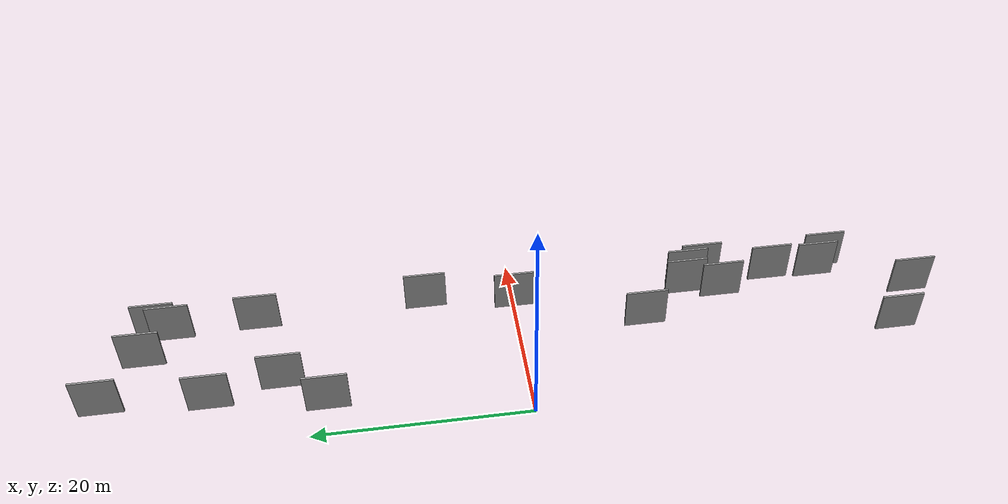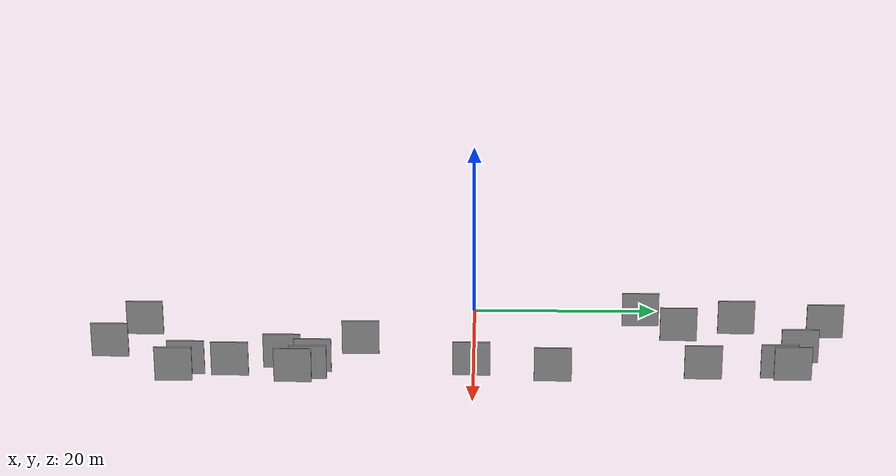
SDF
<sdf version="1.6">
 <world name="default">
  <scene>
   <sky><clouds><speed>12</speed></clouds></sky>
   <ambient>0.4 0.4 0.4 1</ambient>
   <background>0.7 0.7 0.7 1</background>
   <shadows>1</shadows>
  </scene>
  <gravity>0 0 -9.8066</gravity>
  <magnetic_field>6e-06 2.3e-05 -4.2e-05</magnetic_field>
  <physics default="0" name="default_physics" type="ode">
   <ode>
    <solver>
     <type>quick</type>
     <iters>10</iters>
     <sor>1.0</sor>
     <use_dynamic_moi_rescaling>0</use_dynamic_moi_rescaling>
    </solver>
    <constraints>
     <cfm>0</cfm>
     <erp>0.2</erp>
     <contact_max_correcting_vel>100</contact_max_correcting_vel>
     <contact_surface_layer>0.001</contact_surface_layer>
    </constraints>
   </ode>
   <max_step_size>0.004</max_step_size>
   <real_time_factor>1</real_time_factor>
   <real_time_update_rate>250</real_time_update_rate>
  </physics>
  <light name="sun" type="directional">
   <pose>0 0 10 0 0 0</pose>
   <diffuse>0.8 0.8 0.8 1</diffuse>
   <specular>0.2 0.2 0.2 1</specular>
   <attenuation>
    <range>1000</range>
    <constant>0.9</constant>
    <linear>0.01</linear>
    <quadratic>0.001</quadratic>
   </attenuation>
   <direction>-0.5 0.1 -0.9</direction>
  </light>
  <model name="grey_wall_1">
   <static>1</static>
   <pose>15.9819 -19.2099 0.0 0.000000 0.000000 1.570796</pose>
   <link name="link">
    <pose>0 0 2.00 0 0 0</pose>
    <collision name="collision"><geometry><box><size>4.00 0.2 4.00</size></box></geometry></collision>
    <visual name="visual">
     <cast_shadows>0</cast_shadows>
     <geometry><box><size>4.00 0.2 4.00</size></box></geometry>
     <material>
      <script>
       <uri>model://grey_wall/materials/scripts</uri>
       <uri>model://grey_wall/materials/textures</uri>
       <name>vrc/grey_wall</name>
      </script>
     </material>
    </visual>
   </link>
  </model>
  <model name="grey_wall_2">
   <static>1</static>
   <pose>14.6547 -25.9899 0.0 0.000000 0.000000 1.570796</pose>
   <link name="link">
    <pose>0 0 2.00 0 0 0</pose>
    <collision name="collision"><geometry><box><size>4.00 0.2 4.00</size></box></geometry></collision>
    <visual name="visual">
     <cast_shadows>0</cast_shadows>
     <geometry><box><size>4.00 0.2 4.00</size></box></geometry>
     <material>
      <script>
       <uri>model://grey_wall/materials/scripts</uri>
       <uri>model://grey_wall/materials/textures</uri>
       <name>vrc/grey_wall</name>
      </script>
     </material>
    </visual>
   </link>
  </model>
  <model name="grey_wall_3">
   <static>1</static>
   <pose>15.3178 -17.6294 0.0 0.000000 0.000000 1.570796</pose>
   <link name="link">
    <pose>0 0 2.00 0 0 0</pose>
    <collision name="collision"><geometry><box><size>4.00 0.2 4.00</size></box></geometry></collision>
    <visual name="visual">
     <cast_shadows>0</cast_shadows>
     <geometry><box><size>4.00 0.2 4.00</size></box></geometry>
     <material>
      <script>
       <uri>model://grey_wall/materials/scripts</uri>
       <uri>model://grey_wall/materials/textures</uri>
       <name>vrc/grey_wall</name>
      </script>
     </material>
    </visual>
   </link>
  </model>
  <model name="grey_wall_4">
   <static>1</static>
   <pose>14.8927 24.5373 0.0 0.000000 0.000000 1.570796</pose>
   <link name="link">
    <pose>0 0 2.00 0 0 0</pose>
    <collision name="collision"><geometry><box><size>4.00 0.2 4.00</size></box></geometry></collision>
    <visual name="visual">
     <cast_shadows>0</cast_shadows>
     <geometry><box><size>4.00 0.2 4.00</size></box></geometry>
     <material>
      <script>
       <uri>model://grey_wall/materials/scripts</uri>
       <uri>model://grey_wall/materials/textures</uri>
       <name>vrc/grey_wall</name>
      </script>
     </material>
    </visual>
   </link>
  </model>
  <model name="grey_wall_5">
   <static>1</static>
   <pose>5.6478 38.2847 0.0 0.000000 0.000000 1.570796</pose>
   <link name="link">
    <pose>0 0 2.00 0 0 0</pose>
    <collision name="collision"><geometry><box><size>4.00 0.2 4.00</size></box></geometry></collision>
    <visual name="visual">
     <cast_shadows>0</cast_shadows>
     <geometry><box><size>4.00 0.2 4.00</size></box></geometry>
     <material>
      <script>
       <uri>model://grey_wall/materials/scripts</uri>
       <uri>model://grey_wall/materials/textures</uri>
       <name>vrc/grey_wall</name>
      </script>
     </material>
    </visual>
   </link>
  </model>
  <model name="grey_wall_6">
   <static>1</static>
   <pose>6.5522 22.2837 0.0 0.000000 0.000000 1.570796</pose>
   <link name="link">
    <pose>0 0 2.00 0 0 0</pose>
    <collision name="collision"><geometry><box><size>4.00 0.2 4.00</size></box></geometry></collision>
    <visual name="visual">
     <cast_shadows>0</cast_shadows>
     <geometry><box><size>4.00 0.2 4.00</size></box></geometry>
     <material>
      <script>
       <uri>model://grey_wall/materials/scripts</uri>
       <uri>model://grey_wall/materials/textures</uri>
       <name>vrc/grey_wall</name>
      </script>
     </material>
    </visual>
   </link>
  </model>
  <model name="grey_wall_7">
   <static>1</static>
   <pose>14.3510 -0.1638 0.0 0.000000 0.000000 1.570796</pose>
   <link name="link">
    <pose>0 0 2.00 0 0 0</pose>
    <collision name="collision"><geometry><box><size>4.00 0.2 4.00</size></box></geometry></collision>
    <visual name="visual">
     <cast_shadows>0</cast_shadows>
     <geometry><box><size>4.00 0.2 4.00</size></box></geometry>
     <material>
      <script>
       <uri>model://grey_wall/materials/scripts</uri>
       <uri>model://grey_wall/materials/textures</uri>
       <name>vrc/grey_wall</name>
      </script>
     </material>
    </visual>
   </link>
  </model>
  <model name="grey_wall_8">
   <static>1</static>
   <pose>15.8201 -31.9213 0.0 0.000000 0.000000 1.570796</pose>
   <link name="link">
    <pose>0 0 2.00 0 0 0</pose>
    <collision name="collision"><geometry><box><size>4.00 0.2 4.00</size></box></geometry></collision>
    <visual name="visual">
     <cast_shadows>0</cast_shadows>
     <geometry><box><size>4.00 0.2 4.00</size></box></geometry>
     <material>
      <script>
       <uri>model://grey_wall/materials/scripts</uri>
       <uri>model://grey_wall/materials/textures</uri>
       <name>vrc/grey_wall</name>
      </script>
     </material>
    </visual>
   </link>
  </model>
  <model name="grey_wall_9">
   <static>1</static>
   <pose>4.9015 28.6653 0.0 0.000000 0.000000 1.570796</pose>
   <link name="link">
    <pose>0 0 2.00 0 0 0</pose>
    <collision name="collision"><geometry><box><size>4.00 0.2 4.00</size></box></geometry></collision>
    <visual name="visual">
     <cast_shadows>0</cast_shadows>
     <geometry><box><size>4.00 0.2 4.00</size></box></geometry>
     <material>
      <script>
       <uri>model://grey_wall/materials/scripts</uri>
       <uri>model://grey_wall/materials/textures</uri>
       <name>vrc/grey_wall</name>
      </script>
     </material>
    </visual>
   </link>
  </model>
  <model name="grey_wall_10">
   <static>1</static>
   <pose>3.2611 18.2662 0.0 0.000000 0.000000 1.570796</pose>
   <link name="link">
    <pose>0 0 2.00 0 0 0</pose>
    <collision name="collision"><geometry><box><size>4.00 0.2 4.00</size></box></geometry></collision>
    <visual name="visual">
     <cast_shadows>0</cast_shadows>
     <geometry><box><size>4.00 0.2 4.00</size></box></geometry>
     <material>
      <script>
       <uri>model://grey_wall/materials/scripts</uri>
       <uri>model://grey_wall/materials/textures</uri>
       <name>vrc/grey_wall</name>
      </script>
     </material>
    </visual>
   </link>
  </model>
  <model name="grey_wall_11">
   <static>1</static>
   <pose>14.4332 -30.7024 0.0 0.000000 0.000000 1.570796</pose>
   <link name="link">
    <pose>0 0 2.00 0 0 0</pose>
    <collision name="collision"><geometry><box><size>4.00 0.2 4.00</size></box></geometry></collision>
    <visual name="visual">
     <cast_shadows>0</cast_shadows>
     <geometry><box><size>4.00 0.2 4.00</size></box></geometry>
     <material>
      <script>
       <uri>model://grey_wall/materials/scripts</uri>
       <uri>model://grey_wall/materials/textures</uri>
       <name>vrc/grey_wall</name>
      </script>
     </material>
    </visual>
   </link>
  </model>
  <model name="grey_wall_12">
   <static>1</static>
   <pose>9.8398 -12.2041 0.0 0.000000 0.000000 1.570796</pose>
   <link name="link">
    <pose>0 0 2.00 0 0 0</pose>
    <collision name="collision"><geometry><box><size>4.00 0.2 4.00</size></box></geometry></collision>
    <visual name="visual">
     <cast_shadows>0</cast_shadows>
     <geometry><box><size>4.00 0.2 4.00</size></box></geometry>
     <material>
      <script>
       <uri>model://grey_wall/materials/scripts</uri>
       <uri>model://grey_wall/materials/textures</uri>
       <name>vrc/grey_wall</name>
      </script>
     </material>
    </visual>
   </link>
  </model>
  <model name="grey_wall_13">
   <static>1</static>
   <pose>13.8345 -17.1771 0.0 0.000000 0.000000 1.570796</pose>
   <link name="link">
    <pose>0 0 2.00 0 0 0</pose>
    <collision name="collision"><geometry><box><size>4.00 0.2 4.00</size></box></geometry></collision>
    <visual name="visual">
     <cast_shadows>0</cast_shadows>
     <geometry><box><size>4.00 0.2 4.00</size></box></geometry>
     <material>
      <script>
       <uri>model://grey_wall/materials/scripts</uri>
       <uri>model://grey_wall/materials/textures</uri>
       <name>vrc/grey_wall</name>
      </script>
     </material>
    </visual>
   </link>
  </model>
  <model name="grey_wall_14">
   <static>1</static>
   <pose>15.0910 34.0844 0.0 0.000000 0.000000 1.570796</pose>
   <link name="link">
    <pose>0 0 2.00 0 0 0</pose>
    <collision name="collision"><geometry><box><size>4.00 0.2 4.00</size></box></geometry></collision>
    <visual name="visual">
     <cast_shadows>0</cast_shadows>
     <geometry><box><size>4.00 0.2 4.00</size></box></geometry>
     <material>
      <script>
       <uri>model://grey_wall/materials/scripts</uri>
       <uri>model://grey_wall/materials/textures</uri>
       <name>vrc/grey_wall</name>
      </script>
     </material>
    </visual>
   </link>
  </model>
  <model name="grey_wall_15">
   <static>1</static>
   <pose>5.6755 -35.9718 0.0 0.000000 0.000000 1.570796</pose>
   <link name="link">
    <pose>0 0 2.00 0 0 0</pose>
    <collision name="collision"><geometry><box><size>4.00 0.2 4.00</size></box></geometry></collision>
    <visual name="visual">
     <cast_shadows>0</cast_shadows>
     <geometry><box><size>4.00 0.2 4.00</size></box></geometry>
     <material>
      <script>
       <uri>model://grey_wall/materials/scripts</uri>
       <uri>model://grey_wall/materials/textures</uri>
       <name>vrc/grey_wall</name>
      </script>
     </material>
    </visual>
   </link>
  </model>
  <model name="grey_wall_16">
   <static>1</static>
   <pose>10.6783 -39.2386 0.0 0.000000 0.000000 1.570796</pose>
   <link name="link">
    <pose>0 0 2.00 0 0 0</pose>
    <collision name="collision"><geometry><box><size>4.00 0.2 4.00</size></box></geometry></collision>
    <visual name="visual">
     <cast_shadows>0</cast_shadows>
     <geometry><box><size>4.00 0.2 4.00</size></box></geometry>
     <material>
      <script>
       <uri>model://grey_wall/materials/scripts</uri>
       <uri>model://grey_wall/materials/textures</uri>
       <name>vrc/grey_wall</name>
      </script>
     </material>
    </visual>
   </link>
  </model>
  <model name="grey_wall_17">
   <static>1</static>
   <pose>14.5971 32.6836 0.0 0.000000 0.000000 1.570796</pose>
   <link name="link">
    <pose>0 0 2.00 0 0 0</pose>
    <collision name="collision"><geometry><box><size>4.00 0.2 4.00</size></box></geometry></collision>
    <visual name="visual">
     <cast_shadows>0</cast_shadows>
     <geometry><box><size>4.00 0.2 4.00</size></box></geometry>
     <material>
      <script>
       <uri>model://grey_wall/materials/scripts</uri>
       <uri>model://grey_wall/materials/textures</uri>
       <name>vrc/grey_wall</name>
      </script>
     </material>
    </visual>
   </link>
  </model>
  <model name="grey_wall_18">
   <static>1</static>
   <pose>12.8742 -20.5336 0.0 0.000000 0.000000 1.570796</pose>
   <link name="link">
    <pose>0 0 2.00 0 0 0</pose>
    <collision name="collision"><geometry><box><size>4.00 0.2 4.00</size></box></geometry></collision>
    <visual name="visual">
     <cast_shadows>0</cast_shadows>
     <geometry><box><size>4.00 0.2 4.00</size></box></geometry>
     <material>
      <script>
       <uri>model://grey_wall/materials/scripts</uri>
       <uri>model://grey_wall/materials/textures</uri>
       <name>vrc/grey_wall</name>
      </script>
     </material>
    </visual>
   </link>
  </model>
  <model name="grey_wall_19">
   <static>1</static>
   <pose>11.2492 35.1120 0.0 0.000000 0.000000 1.570796</pose>
   <link name="link">
    <pose>0 0 2.00 0 0 0</pose>
    <collision name="collision"><geometry><box><size>4.00 0.2 4.00</size></box></geometry></collision>
    <visual name="visual">
     <cast_shadows>0</cast_shadows>
     <geometry><box><size>4.00 0.2 4.00</size></box></geometry>
     <material>
      <script>
       <uri>model://grey_wall/materials/scripts</uri>
       <uri>model://grey_wall/materials/textures</uri>
       <name>vrc/grey_wall</name>
      </script>
     </material>
    </visual>
   </link>
  </model>
  <model name="grey_wall_20">
   <static>1</static>
   <pose>15.5370 8.4981 0.0 0.000000 0.000000 1.570796</pose>
   <link name="link">
    <pose>0 0 2.00 0 0 0</pose>
    <collision name="collision"><geometry><box><size>4.00 0.2 4.00</size></box></geometry></collision>
    <visual name="visual">
     <cast_shadows>0</cast_shadows>
     <geometry><box><size>4.00 0.2 4.00</size></box></geometry>
     <material>
      <script>
       <uri>model://grey_wall/materials/scripts</uri>
       <uri>model://grey_wall/materials/textures</uri>
       <name>vrc/grey_wall</name>
      </script>
     </material>
    </visual>
   </link>
  </model>
 </world>
</sdf>
